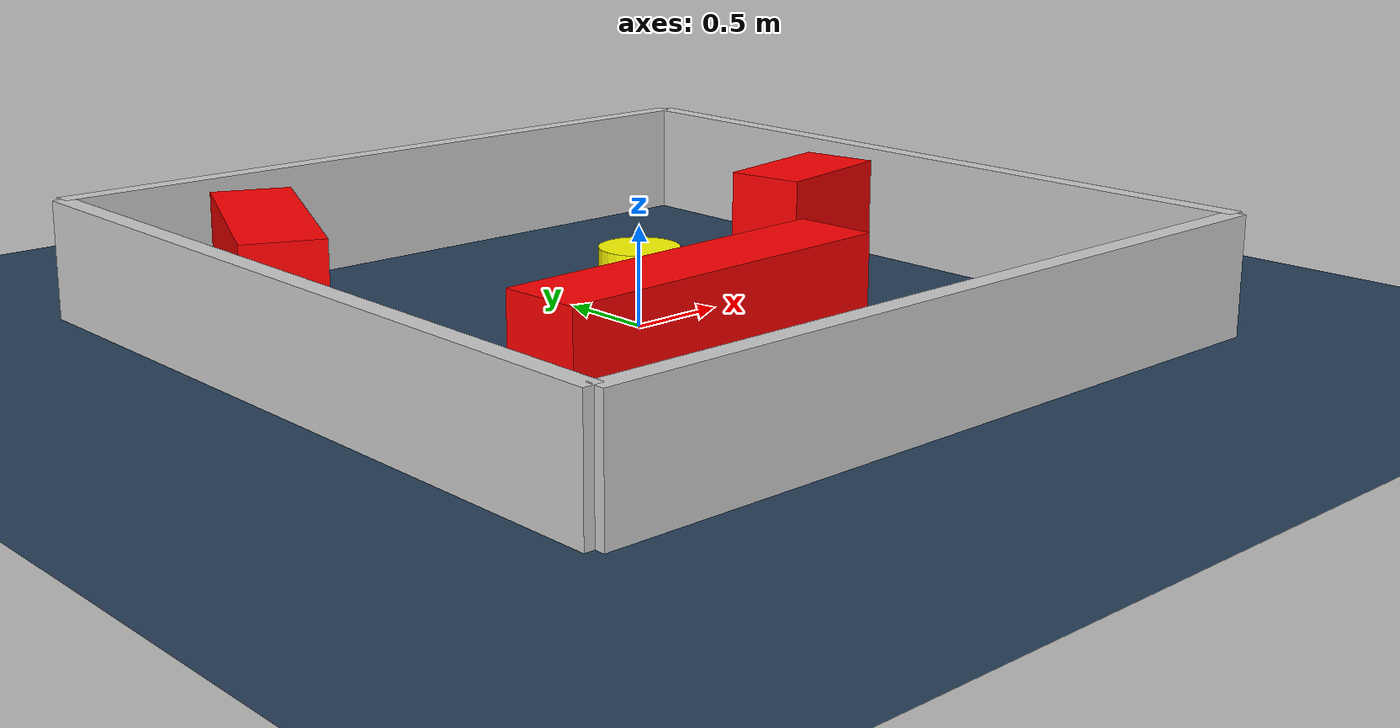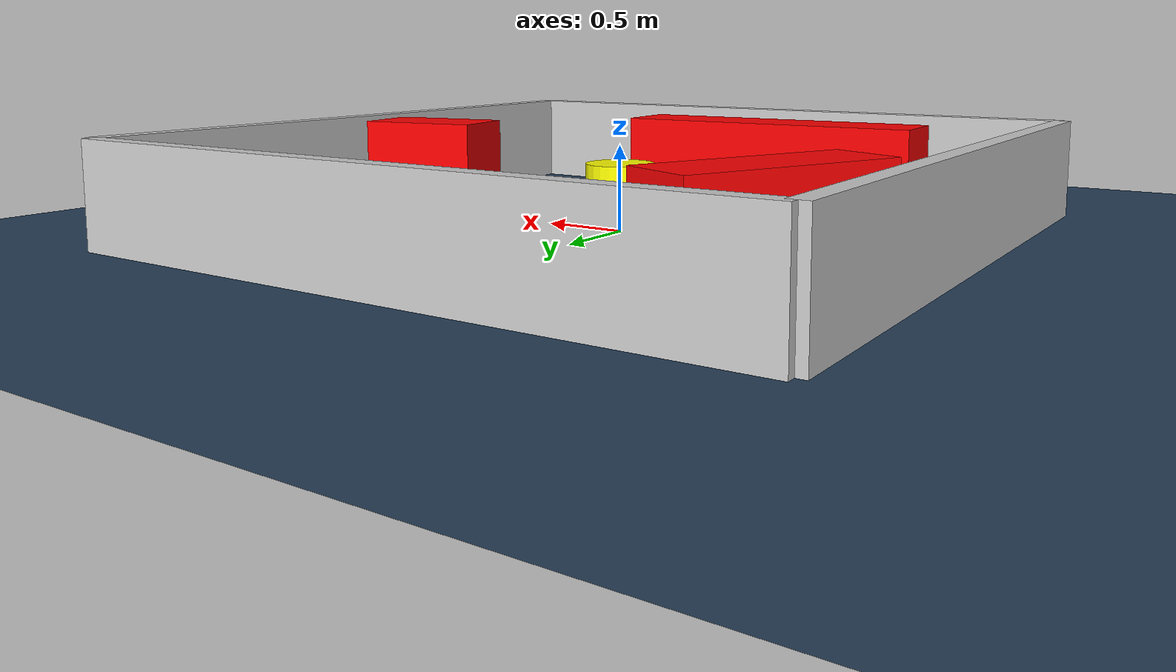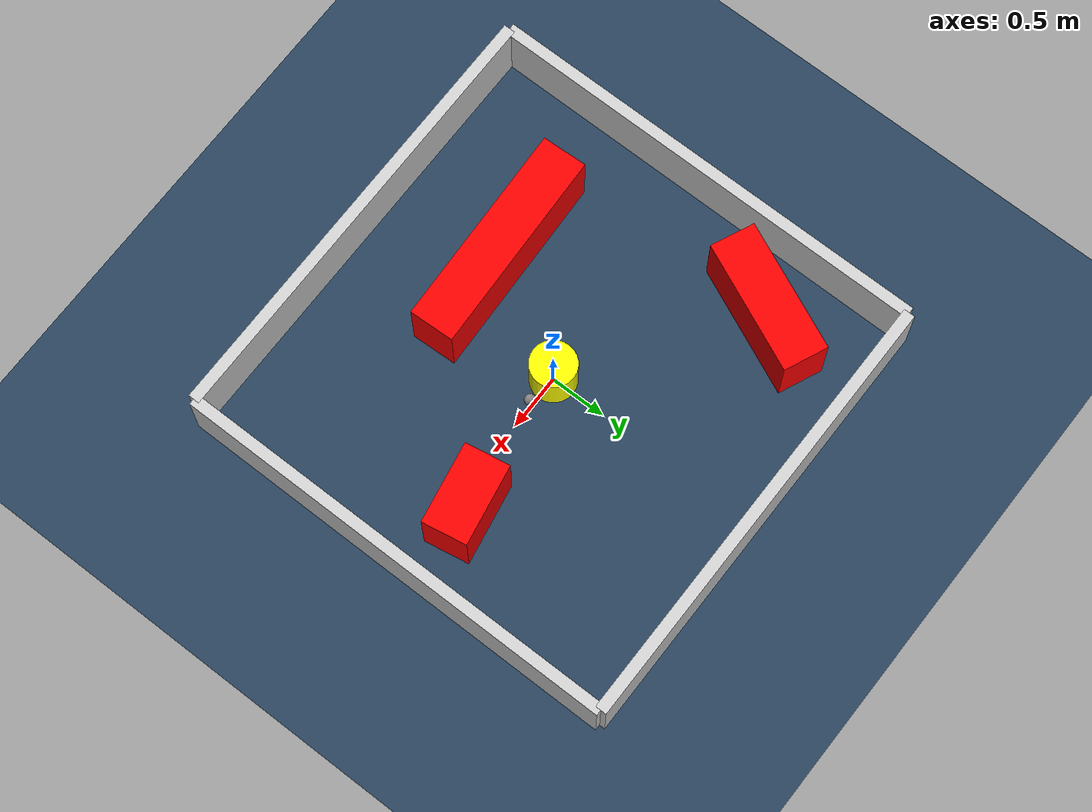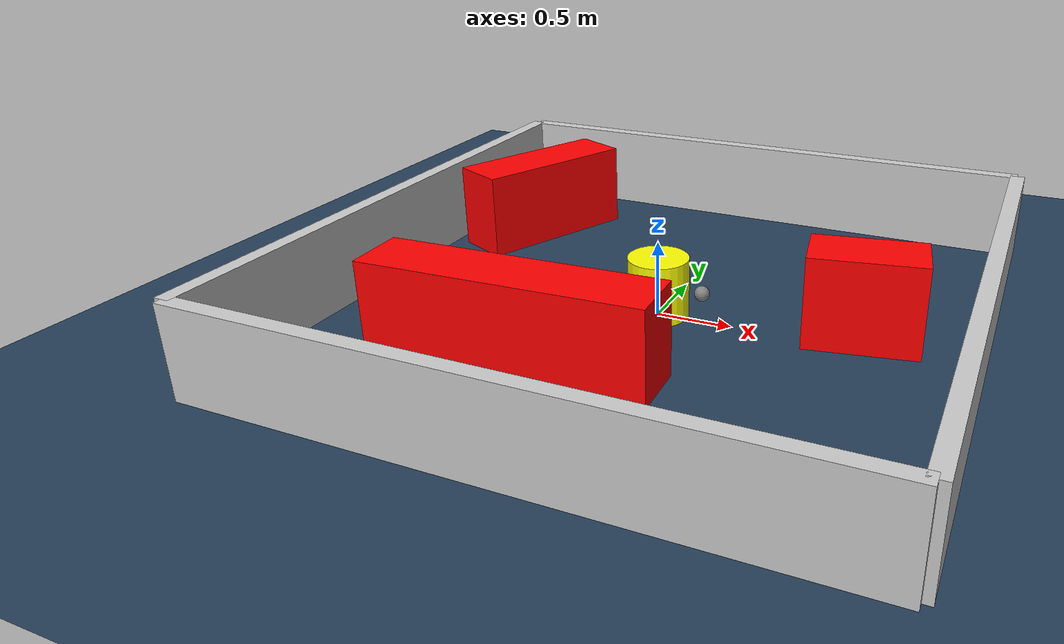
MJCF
<?xml version="1.0" ?>
<mujoco model="generated_environment">
  <option timestep="0.01" integrator="RK4" cone="elliptic"/>
  <default>
    <geom density="1"/>
  </default>
  <asset>
    <texture builtin="gradient" height="3072" rgb1="0.3 0.5 0.7" rgb2="0 0 0" type="skybox" width="512"/>
    <texture builtin="checker" height="300" mark="edge" markrgb="0.8 0.8 0.8" name="groundplane" rgb1="0.2 0.3 0.4" rgb2="0.1 0.2 0.3" type="2d" width="300"/>
    <material name="groundplane" reflectance="0.2" texrepeat="5 5" texture="groundplane" texuniform="true"/>
    <material name="robot" rgba="0.0 1.0 0.0 1"/>
  </asset>
  <worldbody>
    <light dir="0 0 -1" directional="true" pos="0 0 1.5"/>
    <geom condim="4" friction="1.0 0.005 0.001" material="groundplane" name="floor" size="0 0 0.05" type="plane"/>
    <body name="walls">
      <geom name="wall_1" condim="4" pos="-2.0 0.0 0.3" rgba="0.800000011920929 0.800000011920929 0.800000011920929 1.0" size="0.05 2.0 0.3" type="box"/>
      <geom name="wall_2" condim="4" pos="2.0 0.0 0.3" rgba="0.800000011920929 0.800000011920929 0.800000011920929 1.0" size="0.05 2.0 0.3" type="box"/>
      <geom name="wall_3" condim="4" pos="0.0 -2.0 0.3" rgba="0.800000011920929 0.800000011920929 0.800000011920929 1.0" size="2.0 0.05 0.3" type="box"/>
      <geom name="wall_4" condim="4" pos="0.0 2.0 0.3" rgba="0.800000011920929 0.800000011920929 0.800000011920929 1.0" size="2.0 0.05 0.3" type="box"/>
    </body>
    <body name="robot">
      <joint name="joint_x" type="slide" pos="0 0 0" axis="1 0 0"/>
      <joint name="joint_y" type="slide" pos="0 0 0" axis="0 1 0"/>
      <geom name="robot" type="sphere" pos="0.3 0.0 0.2" size="0.05" mass="5." friction="1.0 0.005 0.0001" condim="4" rgba="0.5 0.5 0.5 1.0"/>
      <site name="sensor_ball"/>
    </body>
    <body name="obstacle_movable_1">
      <geom name="obstacle_movable_1" condim="4" pos="0.0 0.0 0.2" euler="0 0 0.0" friction="1.0 0.005 0.001" rgba="1.0 1.0 0.0 1.0" size="0.2 0.2 0.0" type="cylinder" mass="0.1"/>
      <joint type="free"/>
    </body>
    <body name="obstacle_2_static">
      <geom name="obstacle_2_static" condim="4" pos="1.2967907786077097 0.15003825317062636 0.3" euler="0 0 10.04249008744039" friction="1.0 0.005 0.001" rgba="1 0 0 1" size="0.3586583555313736 0.2 0.3" type="box"/>
    </body>
    <body name="obstacle_3_static">
      <geom name="obstacle_3_static" condim="4" pos="-0.5144672497742423 -0.9500149530093527 0.3" euler="0 0 2.3236965967476353" friction="1.0 0.005 0.001" rgba="1 0 0 1" size="0.9084810857728083 0.2 0.3" type="box"/>
    </body>
    <body name="obstacle_4_static">
      <geom name="obstacle_4_static" condim="4" pos="-1.4338793741217775 1.0417424979129588 0.3" euler="0 0 66.0708304377073" friction="1.0 0.005 0.001" rgba="1 0 0 1" size="0.5905717968041495 0.2 0.3" type="box"/>
    </body>
  </worldbody>
  <actuator>
    <motor name="actuator_x" joint="joint_x" gear="1" ctrlrange="-1 1"/>
    <motor name="actuator_y" joint="joint_y" gear="1" ctrlrange="-1 1"/>
  </actuator>
</mujoco>
